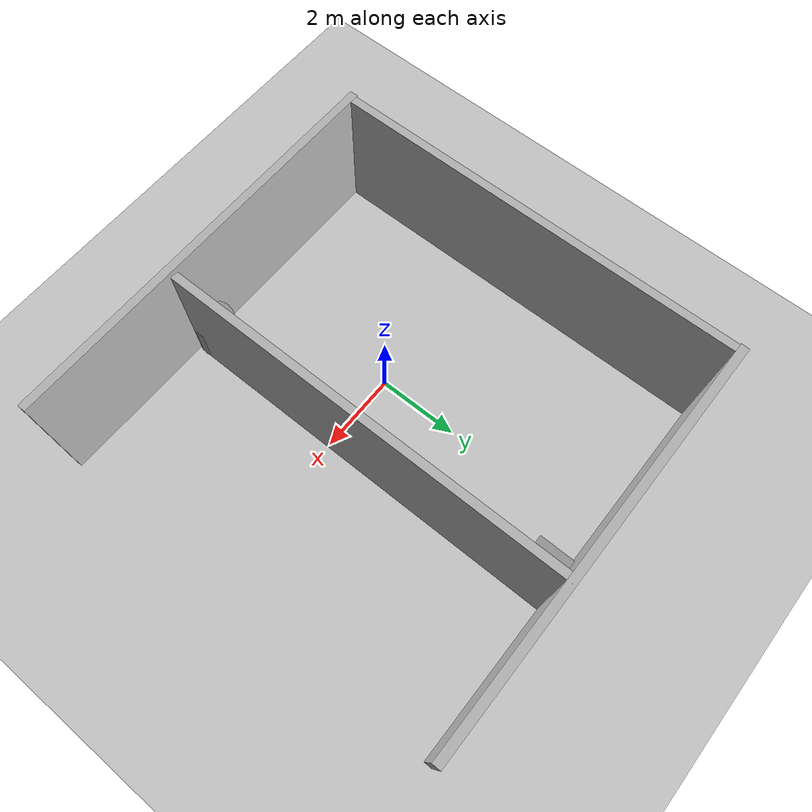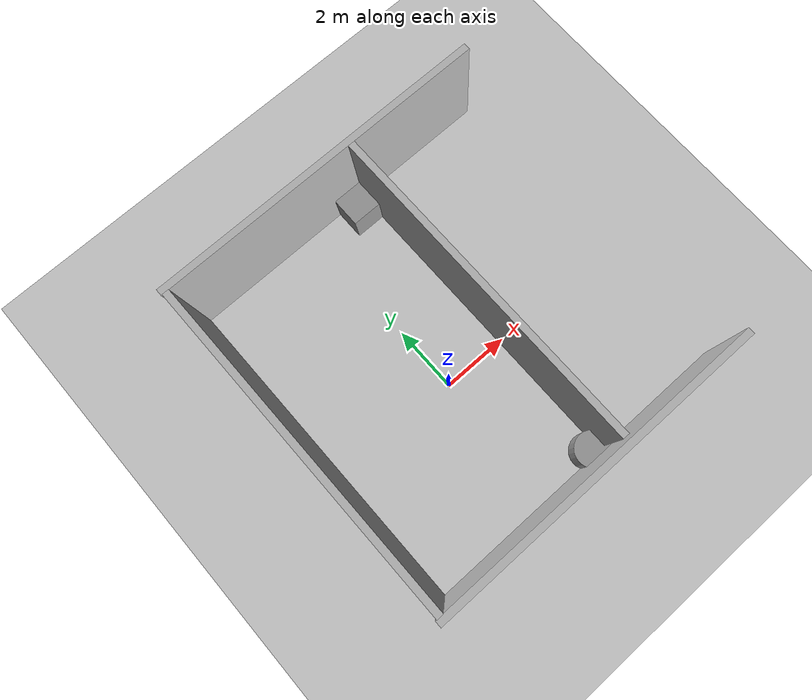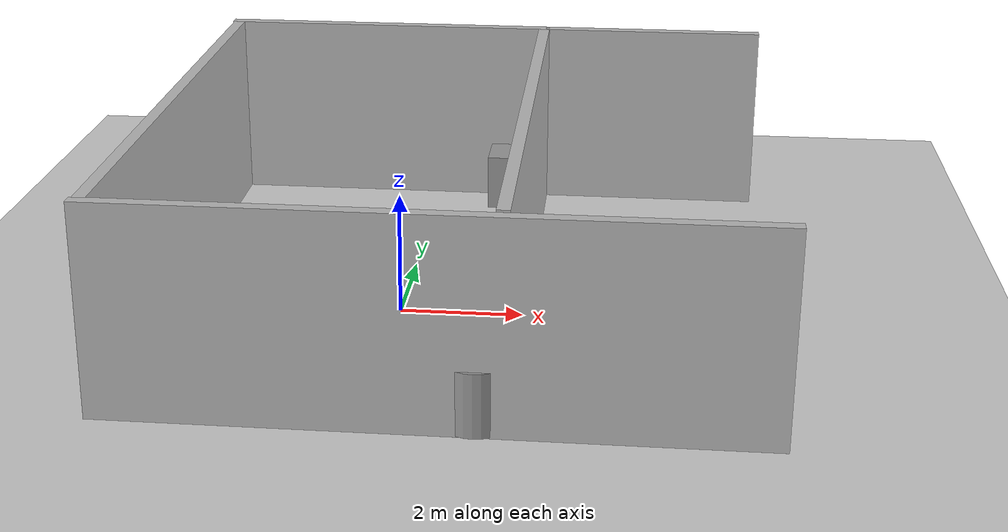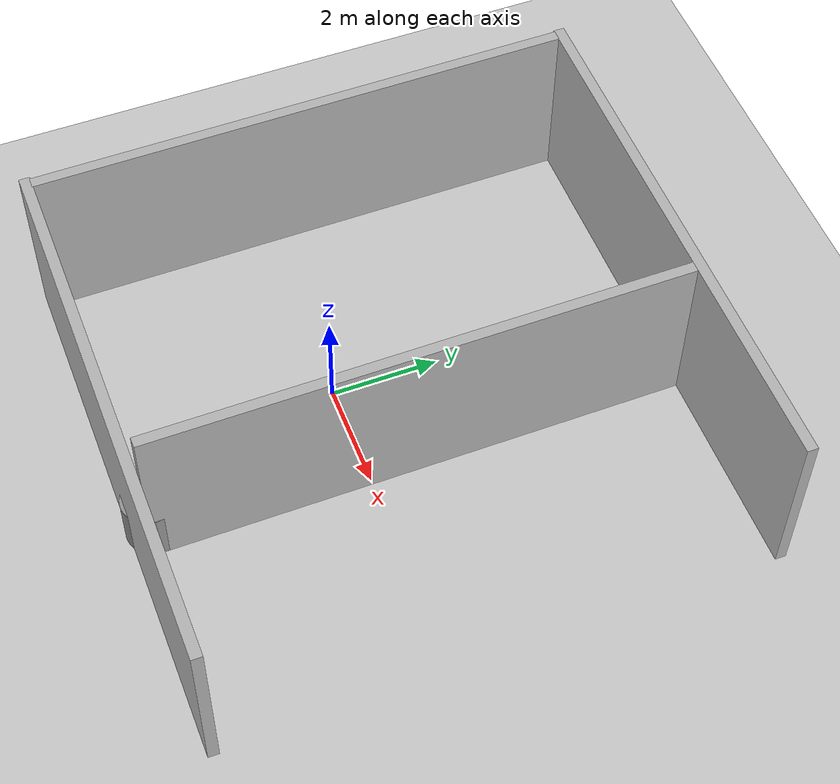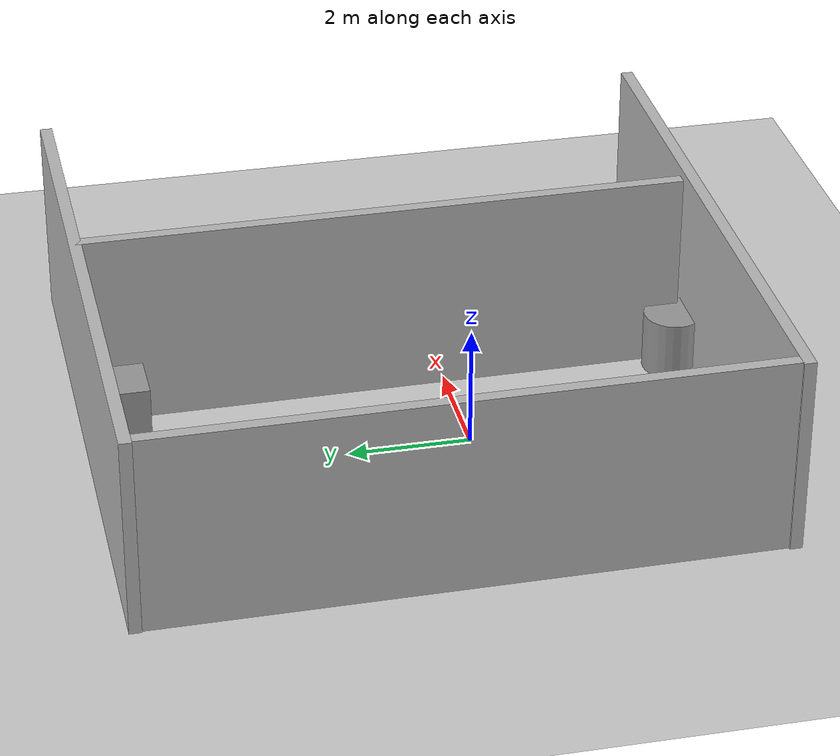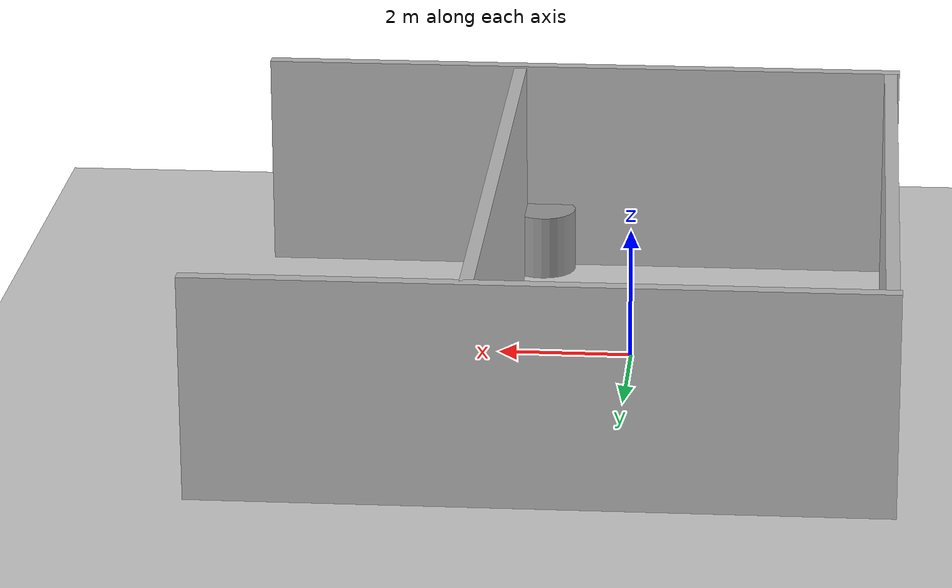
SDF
<sdf version="1.7">
 <world name="simple_room">
  <light name="sun" type="directional">
   <pose>0 0 10 0 -0 0</pose>
   <diffuse>0.8 0.8 0.8 1</diffuse>
   <specular>0.2 0.2 0.2 1</specular>
   <attenuation>
    <range>1000</range>
    <constant>0.9</constant>
    <linear>0.01</linear>
    <quadratic>0.001</quadratic>
   </attenuation>
   <direction>-0.5 0.1 -0.9</direction>
   <spot><inner_angle>0</inner_angle><outer_angle>0</outer_angle><falloff>0</falloff></spot>
  </light>
  <model name="ground_plane">
   <static>1</static>
   <link name="link">
    <collision name="collision">
     <geometry><plane><normal>0 0 1</normal><size>100 100</size></plane></geometry>
     <surface><friction><ode><mu>100</mu><mu2>50</mu2></ode></friction></surface>
    </collision>
    <visual name="visual">
     <cast_shadows>0</cast_shadows>
     <geometry><plane><normal>0 0 1</normal><size>100 100</size></plane></geometry>
     <material>
      <script><uri>file://media/materials/scripts/gazebo.material</uri><name>Gazebo/Grey</name></script>
     </material>
    </visual>
   </link>
  </model>
  <gravity>0 0 -9.8</gravity>
  <magnetic_field>6e-06 2.3e-05 -4.2e-05</magnetic_field>
  <atmosphere type="adiabatic"/>
  <physics type="ode">
   <max_step_size>0.001</max_step_size>
   <real_time_factor>1</real_time_factor>
   <real_time_update_rate>1000</real_time_update_rate>
  </physics>
  <scene><ambient>0.4 0.4 0.4 1</ambient><background>0.7 0.7 0.7 1</background><shadows>1</shadows></scene>
  <spherical_coordinates>
   <surface_model>EARTH_WGS84</surface_model>
   <latitude_deg>0</latitude_deg>
   <longitude_deg>0</longitude_deg>
   <elevation>0</elevation>
   <heading_deg>0</heading_deg>
  </spherical_coordinates>
  <model name="cutout_wall">
   <static>1</static>
   <link name="link">
    <pose>0 0 1.4 0 -0 0</pose>
    <collision name="collision">
     <geometry><box><size>10 0.2 3.8</size></box></geometry>
     <surface>
      <contact>
       <collide_without_contact>1</collide_without_contact>
       <collide_without_contact_bitmask>2</collide_without_contact_bitmask>
      </contact>
     </surface>
    </collision>
    <visual name="visual">
     <cast_shadows>0</cast_shadows>
     <geometry><box><size>10 0.2 3.8</size></box></geometry>
     <material>
      <script>
       <uri>https://fuel.ignitionrobotics.org/1.0/OpenRobotics/models/Cutout Wall/1/files/materials/scripts</uri>
       <uri>https://fuel.ignitionrobotics.org/1.0/OpenRobotics/models/Cutout Wall/1/files/materials/textures</uri>
       <name>drc_practice/cutout_wall</name>
      </script>
     </material>
    </visual>
    <sensor name="mud_contact" type="contact">
     <always_on>1</always_on>
     <update_rate>1000</update_rate>
     <contact><collision>collision</collision><topic>__default_topic__</topic></contact>
    </sensor>
   </link>
   <plugin name="gazebo_mud" filename="libMudPlugin.so">
    <contact_sensor_name>link/mud_contact</contact_sensor_name>
    <stiffness>0.0</stiffness>
    <damping>40.0</damping>
    <contact_surface_bitmask>2</contact_surface_bitmask>
    <link_name>drill::link</link_name>
   </plugin>
   <pose>0.996365 -4.1768 0 0 -0 0</pose>
  </model>
  <model name="cutout_wall_0">
   <static>1</static>
   <link name="link">
    <pose>0 0 1.4 0 -0 0</pose>
    <collision name="collision">
     <geometry><box><size>10 0.2 3.8</size></box></geometry>
     <surface>
      <contact>
       <collide_without_contact>1</collide_without_contact>
       <collide_without_contact_bitmask>2</collide_without_contact_bitmask>
      </contact>
     </surface>
    </collision>
    <visual name="visual">
     <cast_shadows>0</cast_shadows>
     <geometry><box><size>10 0.2 3.8</size></box></geometry>
     <material>
      <script>
       <uri>https://fuel.ignitionrobotics.org/1.0/OpenRobotics/models/Cutout Wall/1/files/materials/scripts</uri>
       <uri>https://fuel.ignitionrobotics.org/1.0/OpenRobotics/models/Cutout Wall/1/files/materials/textures</uri>
       <name>drc_practice/cutout_wall</name>
      </script>
     </material>
    </visual>
    <sensor name="mud_contact" type="contact">
     <always_on>1</always_on>
     <update_rate>1000</update_rate>
     <contact><collision>collision</collision><topic>__default_topic__</topic></contact>
    </sensor>
   </link>
   <plugin name="gazebo_mud" filename="libMudPlugin.so">
    <contact_sensor_name>link/mud_contact</contact_sensor_name>
    <stiffness>0.0</stiffness>
    <damping>40.0</damping>
    <contact_surface_bitmask>2</contact_surface_bitmask>
    <link_name>drill::link</link_name>
   </plugin>
   <pose>1.96648 1.01334 0 0 0 -1.56565</pose>
  </model>
  <model name="unit_cylinder">
   <pose>1.60794 -3.84317 0.5 0 -0 0</pose>
   <link name="link">
    <inertial>
     <mass>1</mass>
     <inertia><ixx>0.145833</ixx><ixy>0</ixy><ixz>0</ixz><iyy>0.145833</iyy><iyz>0</iyz><izz>0.125</izz></inertia>
    </inertial>
    <collision name="collision">
     <geometry><cylinder><radius>0.5</radius><length>1</length></cylinder></geometry>
    </collision>
    <visual name="visual">
     <geometry><cylinder><radius>0.5</radius><length>1</length></cylinder></geometry>
     <material>
      <script><name>Gazebo/Grey</name><uri>file://media/materials/scripts/gazebo.material</uri></script>
     </material>
    </visual>
   </link>
  </model>
  <model name="cutout_wall_clone">
   <static>1</static>
   <link name="link">
    <pose>0 0 1.4 0 -0 0</pose>
    <collision name="collision">
     <geometry><box><size>10 0.2 3.8</size></box></geometry>
     <surface>
      <contact>
       <collide_without_contact>1</collide_without_contact>
       <collide_without_contact_bitmask>2</collide_without_contact_bitmask>
      </contact>
     </surface>
    </collision>
    <visual name="visual">
     <cast_shadows>0</cast_shadows>
     <geometry><box><size>10 0.2 3.8</size></box></geometry>
     <material>
      <script>
       <uri>https://fuel.ignitionrobotics.org/1.0/OpenRobotics/models/Cutout Wall/1/files/materials/scripts</uri>
       <uri>https://fuel.ignitionrobotics.org/1.0/OpenRobotics/models/Cutout Wall/1/files/materials/textures</uri>
       <name>drc_practice/cutout_wall</name>
      </script>
     </material>
    </visual>
    <sensor name="mud_contact" type="contact">
     <always_on>1</always_on>
     <update_rate>1000</update_rate>
     <contact><collision>collision</collision><topic>__default_topic__</topic></contact>
    </sensor>
   </link>
   <plugin name="gazebo_mud" filename="libMudPlugin.so">
    <contact_sensor_name>link/mud_contact</contact_sensor_name>
    <stiffness>0.0</stiffness>
    <damping>40.0</damping>
    <contact_surface_bitmask>2</contact_surface_bitmask>
    <link_name>drill::link</link_name>
   </plugin>
   <pose>0.954755 5.99328 0 0 -0 0</pose>
  </model>
  <model name="cutout_wall_0_clone">
   <static>1</static>
   <link name="link">
    <pose>0 0 1.4 0 -0 0</pose>
    <collision name="collision">
     <geometry><box><size>10 0.2 3.8</size></box></geometry>
     <surface>
      <contact>
       <collide_without_contact>1</collide_without_contact>
       <collide_without_contact_bitmask>2</collide_without_contact_bitmask>
      </contact>
     </surface>
    </collision>
    <visual name="visual">
     <cast_shadows>0</cast_shadows>
     <geometry><box><size>10 0.2 3.8</size></box></geometry>
     <material>
      <script>
       <uri>https://fuel.ignitionrobotics.org/1.0/OpenRobotics/models/Cutout Wall/1/files/materials/scripts</uri>
       <uri>https://fuel.ignitionrobotics.org/1.0/OpenRobotics/models/Cutout Wall/1/files/materials/textures</uri>
       <name>drc_practice/cutout_wall</name>
      </script>
     </material>
    </visual>
    <sensor name="mud_contact" type="contact">
     <always_on>1</always_on>
     <update_rate>1000</update_rate>
     <contact><collision>collision</collision><topic>__default_topic__</topic></contact>
    </sensor>
   </link>
   <plugin name="gazebo_mud" filename="libMudPlugin.so">
    <contact_sensor_name>link/mud_contact</contact_sensor_name>
    <stiffness>0.0</stiffness>
    <damping>40.0</damping>
    <contact_surface_bitmask>2</contact_surface_bitmask>
    <link_name>drill::link</link_name>
   </plugin>
   <pose>-3.89073 0.90461 0 0 0 -1.56565</pose>
  </model>
  <model name="unit_box">
   <pose>1.47028 5.52223 0.5 0 -0 0</pose>
   <link name="link">
    <inertial>
     <mass>1</mass>
     <inertia>
      <ixx>0.166667</ixx>
      <ixy>0</ixy>
      <ixz>0</ixz>
      <iyy>0.166667</iyy>
      <iyz>0</iyz>
      <izz>0.166667</izz>
     </inertia>
    </inertial>
    <collision name="collision"><geometry><box><size>1 1 1</size></box></geometry></collision>
    <visual name="visual">
     <geometry><box><size>1 1 1</size></box></geometry>
     <material>
      <script><name>Gazebo/Grey</name><uri>file://media/materials/scripts/gazebo.material</uri></script>
     </material>
    </visual>
   </link>
  </model>
 </world>
</sdf>
